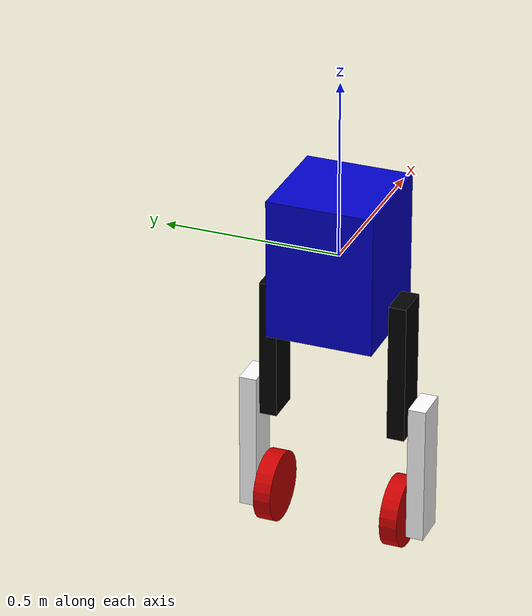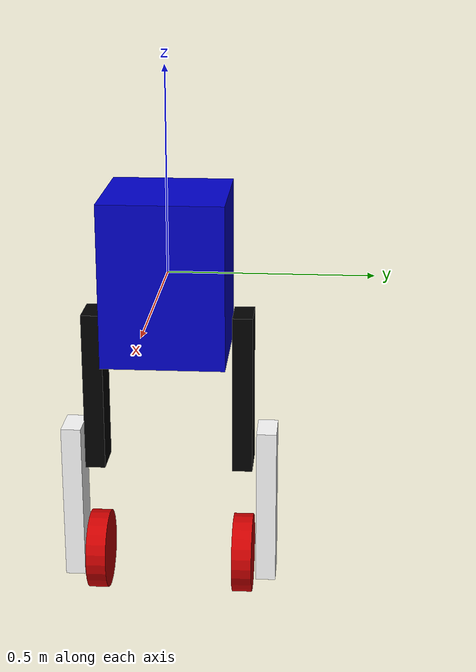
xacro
<?xml version="1.0"?>
<robot name="roscontrol" xmlns:xacro="http://ros.org/wiki/xacro">
  <xacro:property name="bodylen" value="0.3" />
  <xacro:property name="bodywid" value="0.3" />
  <xacro:property name="bodyheight" value="0.4" />
  <xacro:property name="bodymass" value="10.0" />
  <xacro:property name="leglen" value="0.4" />
  <xacro:property name="legwid" value="0.1" />
  <xacro:property name="legmass" value="1.0" />
  <xacro:property name="wheeldiam" value="0.2.0" />
  <xacro:property name="pi" value="3.1415" />
  <material name="blue">
    <color rgba="0 0 0.8 1"/>
  </material>

  <material name="black">
    <color rgba="0 0 0 1"/>
  </material>

  <material name="white">
    <color rgba="1 1 1 1"/>
  </material>
  <material name="red">
    <color rgba="0.8 0 0 1"/>
  </material>

  <xacro:macro name="default_inertial" params="mass">
    <inertial>
      <mass value="${mass}" />
      <inertia ixx="1.0" ixy="0.0" ixz="0.0" iyy="1.0" iyz="0.0" izz="1.0" />
    </inertial>
  </xacro:macro>

  <xacro:macro name="box_inertia" params="m l w h">
      <inertial>
          <mass value="${m}"/>
          <inertia ixx="${m / 12.0 * (w*w + h*h)}" ixy="0.0" ixz="0.0" iyy="${m / 12.0 * (l*l + h*h)}" iyz="0.0" izz="${m / 12.0 * (w*w + l*l)}"/>
      </inertial>
  </xacro:macro>

<!-- start build base link-->
    <link name="base_link">
    <visual>
      <geometry>
        <box size="${bodylen} ${bodywid} ${bodyheight}"/>
      </geometry>
      <material name="blue"/>
    </visual>
    <collision>
      <geometry>
        <box size="${bodylen} ${bodywid} ${bodyheight}"/>
      </geometry>
    </collision>
    <xacro:box_inertia m="10" l="0.3" w="0.3" h="0.4"/>
    </link>
    <gazebo reference="base_link">
      <mu1 value="1"/>
      <mu2 value="1"/>
      <kp value="10000000.0" />
      <kd value="1.0" />
      <material>Gazebo/Blue</material>
    </gazebo>

<!-- start build thigh link-->
  <xacro:macro name="thigh" params="prefix reflect">
    <link name="${prefix}_thigh">
      <visual>
        <geometry>
          <box size="${legwid} 0.05 ${leglen}"/>
        </geometry>
        <origin xyz="0 0 ${-leglen/2.0 + 0.05}" rpy="0 0 0"/>
        <material name="black"/>
      </visual>
      <collision>
        <geometry>
          <box size="${legwid} 0.05 ${leglen}"/>
        </geometry>
        <origin xyz="0 0 ${-leglen/2.0 + 0.05}" rpy="0 0 0"/>
      </collision>
      <xacro:box_inertia m="1" l="0.1" w="0.05" h="0.5"/>
    </link>

    <joint name="base_to_${prefix}_thigh" type="continuous">
      <parent link="base_link"/>
      <child link="${prefix}_thigh"/>
      <axis xyz="0 1 0"/>
      <origin xyz="0 ${reflect*(0.05/2 + bodywid/2+.01)} -0.15"/>
      <limit effort="30" velocity="1.0"/>
    </joint>

        <!-- This block provides the simulator (Gazebo) with information on a few additional
    physical properties. See http://gazebosim.org/tutorials/?tut=ros_urdf for more-->
    <gazebo reference="${prefix}_thigh">
      <mu1 value="1"/>
      <mu2 value="1"/>
      <kp value="10000000.0" />
      <kd value="10.0" />
      <material>Gazebo/Grey</material>
    </gazebo>

    <!-- This block connects hip joint to an actuator (motor), which informs both
    simulation and visualization of the robot -->
    <transmission name="${prefix}_thigh_trans">
      <type>transmission_interface/SimpleTransmission</type>
      <actuator name="${prefix}_thigh_motor">
        <mechanicalReduction>1</mechanicalReduction>
      </actuator>
      <joint name="base_to_${prefix}_thigh">
        <hardwareInterface>hardware_interface/PositionJointInterface</hardwareInterface>
      </joint>
    </transmission>
  </xacro:macro>
  <xacro:thigh prefix="right" reflect="-1" />
  <xacro:thigh prefix="left" reflect="1" />

<!-- start build shank link-->
<xacro:macro name="shank" params="prefix reflect">
    <link name="${prefix}_shank">
      <visual>
        <geometry>
          <box size="${legwid} 0.05 ${leglen}"/>
        </geometry>
        <origin xyz="0 0 ${-leglen/2.0 + 0.05}" rpy="0 0 0"/>
        <material name="white"/>
      </visual>
      <collision>
        <geometry>
          <box size="${legwid} 0.05 ${leglen}"/>
        </geometry>
        <origin xyz="0 0 ${-leglen/2.0 + 0.05}" rpy="0 0 0"/>
      </collision>
      <xacro:box_inertia m="1" l="0.1" w="0.05" h="0.05"/>
    </link>

    <joint name="${prefix}_thigh_to_${prefix}_shank" type="continuous">
      <parent link="${prefix}_thigh"/>
      <child link="${prefix}_shank"/>
      <axis xyz="0 1 0"/>
      <origin xyz="0 ${reflect*(0.05 +.01)} ${-(leglen-0.1)}" />
      <limit effort="30" velocity="1.0"/>
    </joint>

        <!-- This block provides the simulator (Gazebo) with information on a few additional
    physical properties. See http://gazebosim.org/tutorials/?tut=ros_urdf for more-->
    <gazebo reference="${prefix}_shank">
      <mu1 value="1"/>
      <mu2 value="1"/>
      <kp value="10000000.0" />
      <kd value="10.0" />
      <material>Gazebo/Grey</material>
    </gazebo>

    <!-- This block connects hip joint to an actuator (motor), which informs both
    simulation and visualization of the robot -->
    <transmission name="${prefix}_shank_trans">
      <type>transmission_interface/SimpleTransmission</type>
      <actuator name="${prefix}_shank_motor">
        <mechanicalReduction>1</mechanicalReduction>
      </actuator>
      <joint name="${prefix}_thigh_to_${prefix}_shank">
        <hardwareInterface>hardware_interface/PositionJointInterface</hardwareInterface>
      </joint>
    </transmission>
  </xacro:macro>
  <xacro:shank prefix="right" reflect="-1" />
  <xacro:shank prefix="left" reflect="1" />

<!-- start build wheel link-->
<xacro:macro name="cylinder_inertia" params="m r h">
        <inertial>
        <mass value="${m}"/>
        <inertia ixx="${m*(3*r*r+h*h)/12}" ixy = "0" ixz = "0" iyy="${m*(3*r*r+h*h)/12}" iyz = "0" izz="${m*r*r/2}"/>
        </inertial>
    </xacro:macro>

  <xacro:macro name="wheel" params="prefix reflect">

    <link name="${prefix}_wheel">
      <visual>
        <origin xyz="0 0 0" rpy="${pi/2} 0 0" />
        <geometry>
          <cylinder radius="0.1" length="0.05"/>
        </geometry>
        <material name="red"/>
      </visual>
      <collision>
        <origin xyz="0 0 0" rpy="${pi/2} 0 0" />
        <geometry>
          <cylinder radius="0.1" length="0.05"/>
        </geometry>
      </collision>
      <xacro:cylinder_inertia m="0.4" r="0.1" h="0.05"/>
    </link>
    <joint name="${prefix}_wheel_joint" type="continuous">
      <axis xyz="0 1 0" rpy="0 0 0" />
      <parent link="${prefix}_shank"/>
      <child link="${prefix}_wheel"/>
      <origin xyz="0 ${-reflect*(0.05 +.01)} ${-(leglen-0.1)}" rpy="0 0 0"/>
    </joint>

    <!-- This block provides the simulator (Gazebo) with information on a few additional
    physical properties. See http://gazebosim.org/tutorials/?tut=ros_urdf for more-->
    <gazebo reference="${prefix}_wheel">
      <mu1 value="1.2"/>
      <mu2 value="1.2"/>
      <kp value="10000000.0" />
      <kd value="10.0" />
      <material>Gazebo/Red</material>
    </gazebo>

    <!-- This block connects the wheel joint to an actuator (motor), which informs both
    simulation and visualization of the robot -->
    <transmission name="${prefix}_wheel_trans">
      <type>transmission_interface/SimpleTransmission</type>
      <actuator name="${prefix}_wheel_motor">
        <mechanicalReduction>1</mechanicalReduction>
      </actuator>
      <joint name="${prefix}_wheel_joint">
        <hardwareInterface>hardware_interface/EffortJointInterface</hardwareInterface>
      </joint>
    </transmission>

  </xacro:macro>
  <xacro:wheel prefix="right" reflect="-1" />
  <xacro:wheel prefix="left" reflect="1" />

  <!-- Gazebo plugin for ROS Control -->
  <gazebo>
    <plugin name="gazebo_ros_control" filename="libgazebo_ros_control.so">
      <robotNamespace>/</robotNamespace>
    </plugin>
  </gazebo>

</robot>
